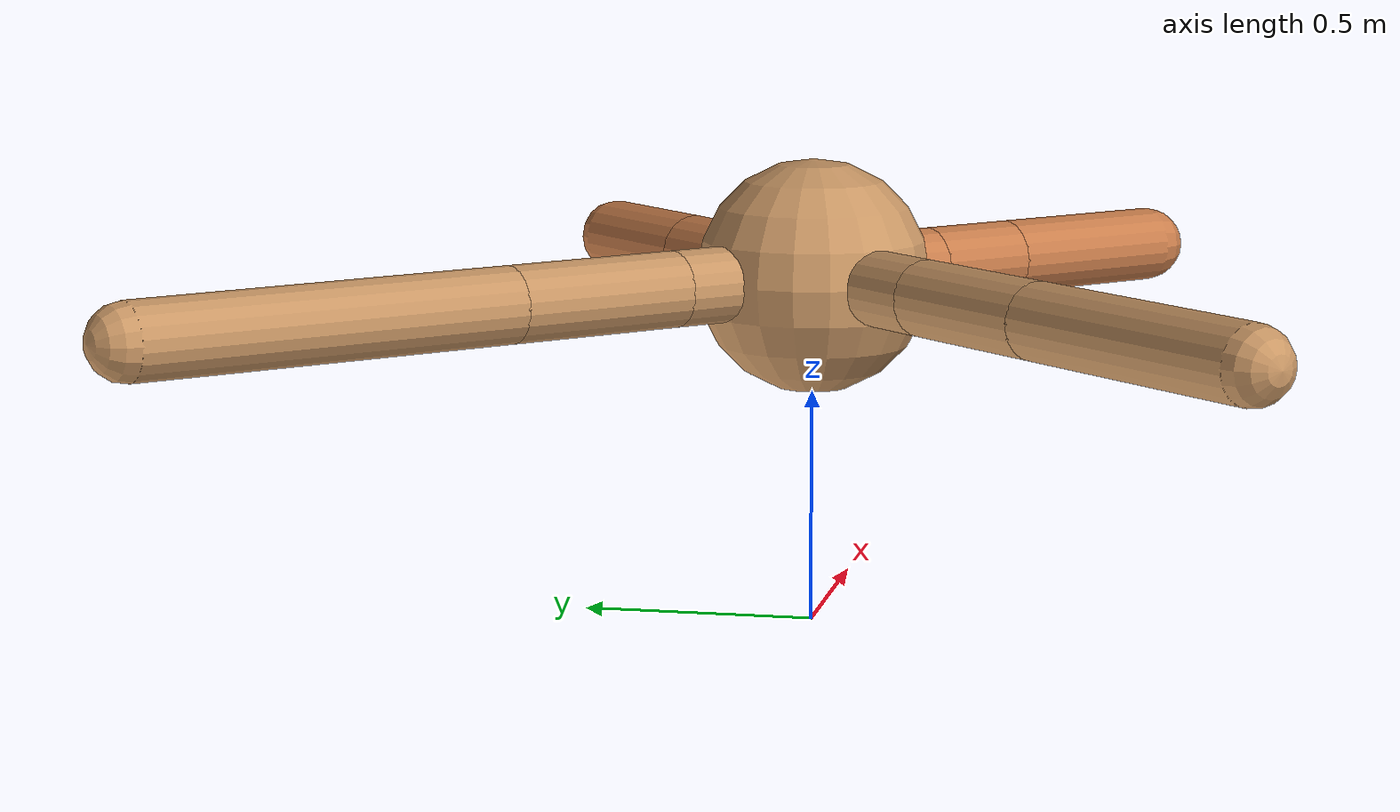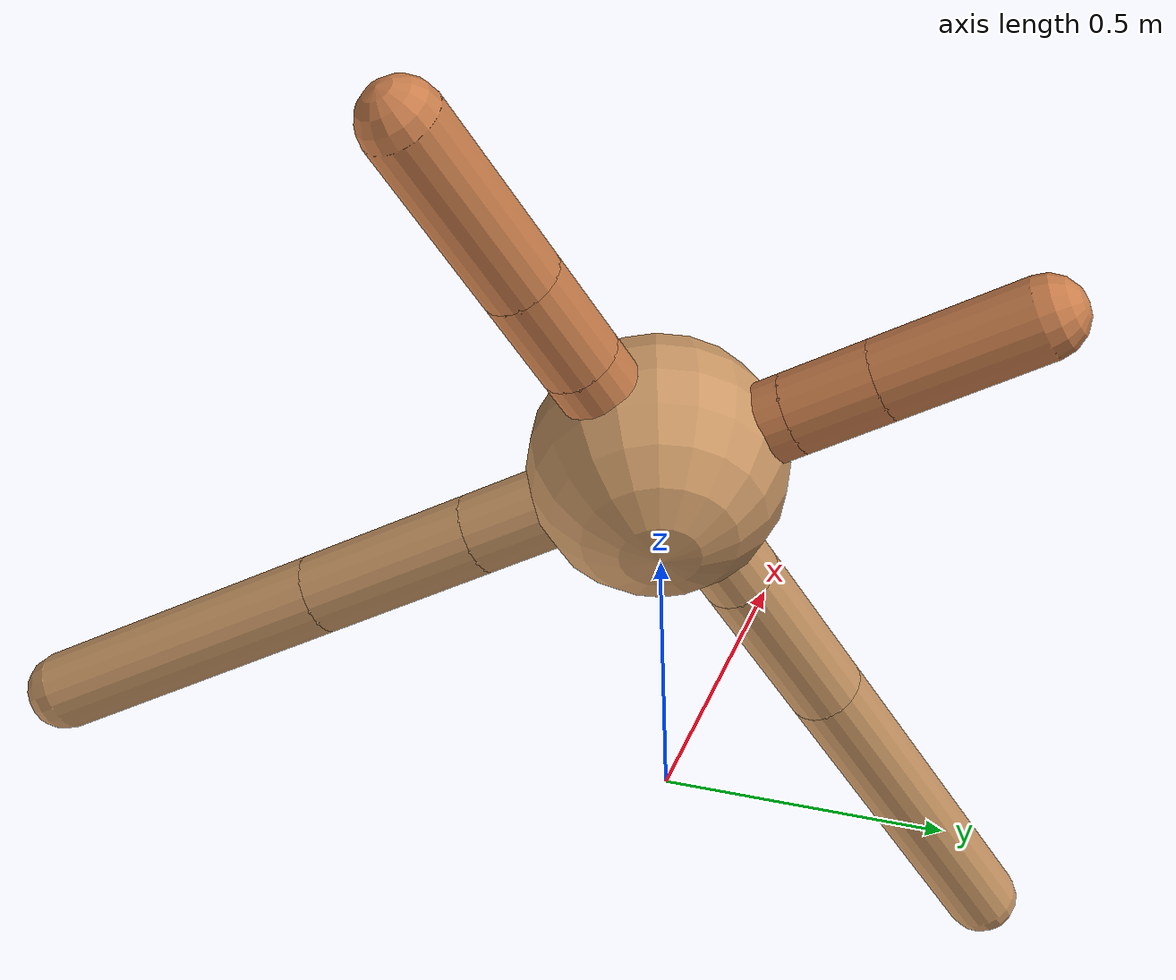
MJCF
<mujoco model="ant">
  <compiler angle="degree" coordinate="local" inertiafromgeom="true" />
  <option integrator="RK4" timestep="0.01" />
  <custom>
    <numeric data="0.0 0.0 0.55 1.0 0.0 0.0 0.0 0.0 1.0 0.0 -1.0 0.0 -1.0 0.0 1.0" name="init_qpos" />
  </custom>
  <default>
    <joint armature="1" damping="1" limited="true" />
    <geom conaffinity="0" condim="3" density="5.0" friction="1.5 0.1 0.1" margin="0.01" rgba="0.8 0.6 0.4 1" />
  </default>
  <worldbody>
    <body name="torso" pos="0 0 0.75">
      <geom name="torso_geom" pos="0 0 0" size="0.25" type="sphere" />

      <body name="front_left_leg" pos="0 0 0">
        <geom fromto="0.0 0.0 0.0 0.2 0.2 0.0" name="aux_1_geom" size="0.08" type="capsule" rgba=".8 .5 .3 1" />
        <body name="aux_1" pos="0.2 0.2 0.0">
          <joint axis="0 0 1" name="hip_1" pos="0.0 0.0 0.0" range="-40 40" type="hinge" />
          <geom fromto="0.0 0.0 0.0 0.12622586610486136 0.12622586610486136 0.0" name="left_leg_geom" size="0.08" type="capsule" rgba=".8 .5 .3 1" />
          <body pos="0.12622586610486136 0.12622586610486136 0.0" name="front_left_foot">
            <joint axis="-1 1 0" name="ankle_1" pos="0.0 0.0 0.0" range="30 100" type="hinge" />
            <geom fromto="0.0 0.0 0.0 0.22491951945070637 0.22491951945070637 0.0" name="left_ankle_geom" size="0.08" type="capsule" rgba=".8 .5 .3 1" />
          </body>
        </body>
      </body>
      <body name="front_right_leg" pos="0 0 0">
        <geom fromto="0.0 0.0 0.0 -0.24927884567988612 0.24927884567988612 0.0" name="aux_2_geom" size="0.08" type="capsule" />
        <body name="aux_2" pos="-0.24927884567988612 0.24927884567988612 0.0">
          <joint axis="0 0 1" name="hip_2" pos="0.0 0.0 0.0" range="-40 40" type="hinge" />
          <geom fromto="0.0 0.0 0.0 -0.2794698589081313 0.2794698589081313 0.0" name="right_leg_geom" size="0.08" type="capsule" />
          <body pos="-0.2794698589081313 0.2794698589081313 0.0" name="front_right_foot">
            <joint axis="1 1 0" name="ankle_2" pos="0.0 0.0 0.0" range="-100 -30" type="hinge" />
            <geom fromto="0.0 0.0 0.0 -0.598940495288434 0.598940495288434 0.0" name="right_ankle_geom" size="0.08" type="capsule" />
          </body>
        </body>
      </body>
      <body name="left_back_leg" pos="0 0 0">
        <geom fromto="0.0 0.0 0.0 -0.2771577581699882 -0.2771577581699882 0.0" name="aux_3_geom" size="0.08" type="capsule" />
        <body name="aux_3" pos="-0.2771577581699882 -0.2771577581699882 0.0">
          <joint axis="0 0 1" name="hip_3" pos="0.0 0.0 0.0" range="-40 40" type="hinge" />
          <geom fromto="0.0 0.0 0.0 -0.25750155626163435 -0.25750155626163435 0.0" name="back_leg_geom" size="0.08" type="capsule" />
          <body pos="-0.25750155626163435 -0.25750155626163435 0.0" name="left_back_foot">
            <joint axis="-1 1 0" name="ankle_3" pos="0.0 0.0 0.0" range="-100 -30" type="hinge" />
            <geom fromto="0.0 0.0 0.0 -0.442457560672883 -0.442457560672883 0.0" name="third_ankle_geom" size="0.08" type="capsule" />
          </body>
        </body>
      </body>
      <body name="right_back_leg" pos="0 0 0">
        <geom fromto="0.0 0.0 0.0 0.21811734881500033 -0.21811734881500033 0.0" name="aux_4_geom" size="0.08" type="capsule" rgba=".8 .5 .3 1" />
        <body name="aux_4" pos="0.21811734881500033 -0.21811734881500033 0.0">
          <joint axis="0 0 1" name="hip_4" pos="0.0 0.0 0.0" range="-40 40" type="hinge" />
          <geom fromto="0.0 0.0 0.0 0.1509254568858581 -0.1509254568858581 0.0" name="rightback_leg_geom" size="0.08" type="capsule" rgba=".8 .5 .3 1" />
          <body pos="0.1509254568858581 -0.1509254568858581 0.0" name="right_back_foot">
            <joint axis="1 1 0" name="ankle_4" pos="0.0 0.0 0.0" range="30 100" type="hinge" />
            <geom fromto="0.0 0.0 0.0 0.28326152073861083 -0.28326152073861083 0.0" name="fourth_ankle_geom" size="0.08" type="capsule" rgba=".8 .5 .3 1" />
          </body>
        </body>
      </body>
    </body>
  </worldbody>
  <actuator>
    <motor ctrllimited="true" ctrlrange="-1.0 1.0" joint="hip_4" gear="150" />
    <motor ctrllimited="true" ctrlrange="-1.0 1.0" joint="ankle_4" gear="150" />
    <motor ctrllimited="true" ctrlrange="-1.0 1.0" joint="hip_1" gear="150" />
    <motor ctrllimited="true" ctrlrange="-1.0 1.0" joint="ankle_1" gear="150" />
    <motor ctrllimited="true" ctrlrange="-1.0 1.0" joint="hip_2" gear="150" />
    <motor ctrllimited="true" ctrlrange="-1.0 1.0" joint="ankle_2" gear="150" />
    <motor ctrllimited="true" ctrlrange="-1.0 1.0" joint="hip_3" gear="150" />
    <motor ctrllimited="true" ctrlrange="-1.0 1.0" joint="ankle_3" gear="150" />
  </actuator>
</mujoco>
